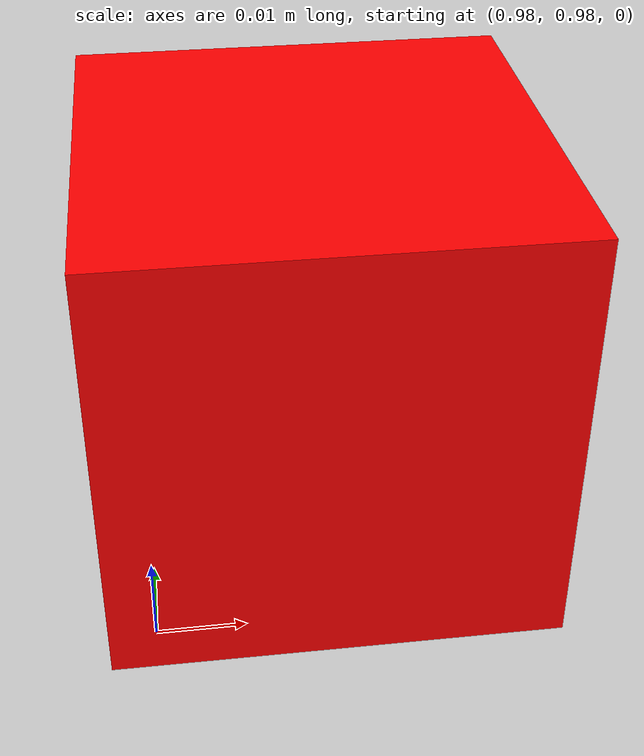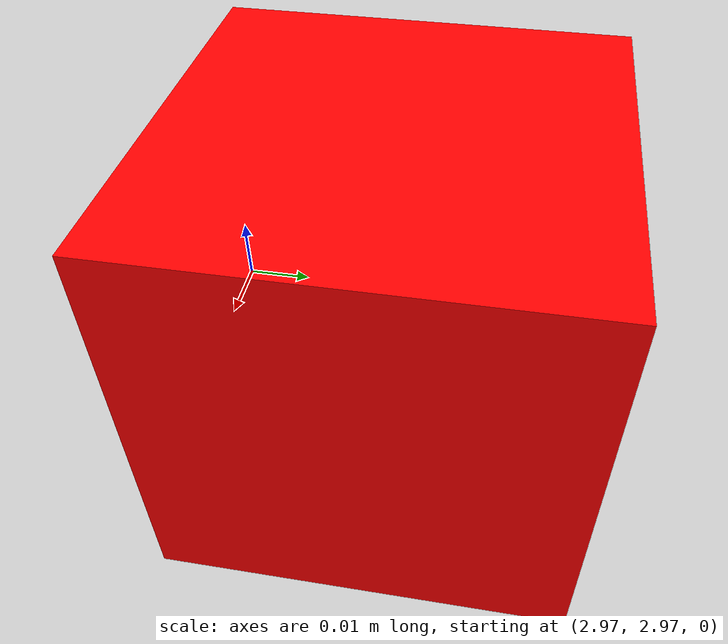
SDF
<?xml version="1.0" ?>
<sdf version="1.5">
  <world name="default">
    <!-- Ground -->
    <include>
      <uri>model://ground_plane</uri>
    </include>
      <model name="RFIDTag1">
  <pose>0 0 0.025 0 0 0</pose>
   <static>true</static>
    <link name="link">
         <inertial>
           <mass>0.1</mass>
        </inertial>
        <visual name="base">
         <geometry>
          <box>
           <size>.05 .05 .05</size>
          </box>
         </geometry>
  	 <material>
   	  <ambient>1 0 0 1</ambient>
    	  <diffuse>1 0 0 1</diffuse>
    	  <specular>0.1 0.1 0.1 1</specular>
    	  <emissive>0 0 0 0</emissive>
  	 </material>
        </visual>
	<sensor name="wirelessTransmitter" type="wireless_transmitter">
          <always_on>1</always_on>
          <update_rate>1</update_rate>
          <visualize>true</visualize>
          <transceiver>
            <essid>TAG1</essid>
            <frequency>2442.0</frequency>
            <power>14.5</power>
            <gain>2.5</gain>
          </transceiver>
        </sensor>
    </link>
  </model>
     <model name="RFIDTag2">
  <pose>3 3 0.025 0 0 0</pose>
   <static>true</static>
    <link name="link">
         <inertial>
           <mass>0.1</mass>
        </inertial>
        <visual name="base">
         <geometry>
          <box>
           <size>.05 .05 .05</size>
          </box>
         </geometry>
  	 <material>
   	  <ambient>1 0 0 1</ambient>
    	  <diffuse>1 0 0 1</diffuse>
    	  <specular>0.1 0.1 0.1 1</specular>
    	  <emissive>0 0 0 0</emissive>
  	 </material>
        </visual>
	<sensor name="wirelessTransmitter" type="wireless_transmitter">
          <always_on>1</always_on>
          <update_rate>1</update_rate>
          <visualize>true</visualize>
          <transceiver>
            <essid>TAG2</essid>
            <frequency>2442.0</frequency>
            <power>14.5</power>
            <gain>2.5</gain>
          </transceiver>
        </sensor>
    </link>
  </model>
     <model name="RFIDTag3">
  <pose>1 1 0.025 0 0 0</pose>
   <static>true</static>
    <link name="link">
         <inertial>
           <mass>0.1</mass>
        </inertial>
        <visual name="base">
         <geometry>
          <box>
           <size>.05 .05 .05</size>
          </box>
         </geometry>
  	 <material>
   	  <ambient>1 0 0 1</ambient>
    	  <diffuse>1 0 0 1</diffuse>
    	  <specular>0.1 0.1 0.1 1</specular>
    	  <emissive>0 0 0 0</emissive>
  	 </material>
        </visual>
	<sensor name="wirelessTransmitter" type="wireless_transmitter">
          <always_on>1</always_on>
          <update_rate>1</update_rate>
          <visualize>true</visualize>
          <transceiver>
            <essid>TAG3</essid>
            <frequency>2442.0</frequency>
            <power>14.5</power>
            <gain>2.5</gain>
          </transceiver>
        </sensor>
    </link>
  </model>
<model name="RFIDSensor">
  <pose>1 1 0.025 0 0 0</pose>
   <static>true</static>
    <link name="link">
         <inertial>
           <mass>0.1</mass>
        </inertial>
        <visual name="base">
         <geometry>
          <box>
           <size>.05 .05 .05</size>
          </box>
         </geometry>
	 <material>
   	  <ambient>1 0 0 1</ambient>
    	  <diffuse>1 0 0 1</diffuse>
    	  <specular>0.1 0.1 0.1 1</specular>
    	  <emissive>0 0 0 0</emissive>
  	 </material>
        </visual>
	<sensor name="wirelessReceiver" type="wireless_receiver">
	<plugin name="receiver_plugin" filename="/home/archee8/rfid_test/build/librfid_test.so">

	</plugin>
          <always_on>1</always_on>
          <update_rate>1</update_rate>
          <visualize>true</visualize>
          <transceiver>
            <essid>RFIDSensor</essid>
            <frequency>2442.0</frequency>
            <power>14.5</power>
            <gain>2.5</gain>
	    <sensivity>-50</sensivity>
          </transceiver>
        </sensor>
    </link>
  </model>
  </world>
</sdf>
